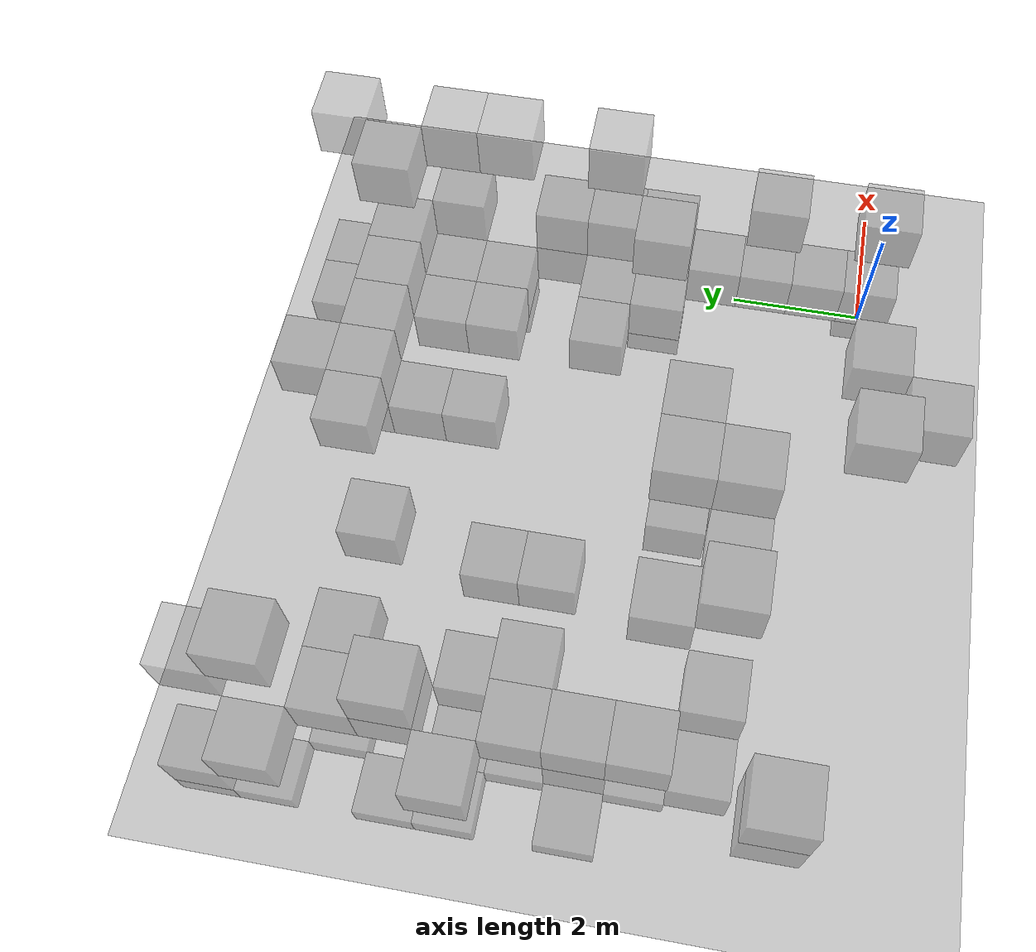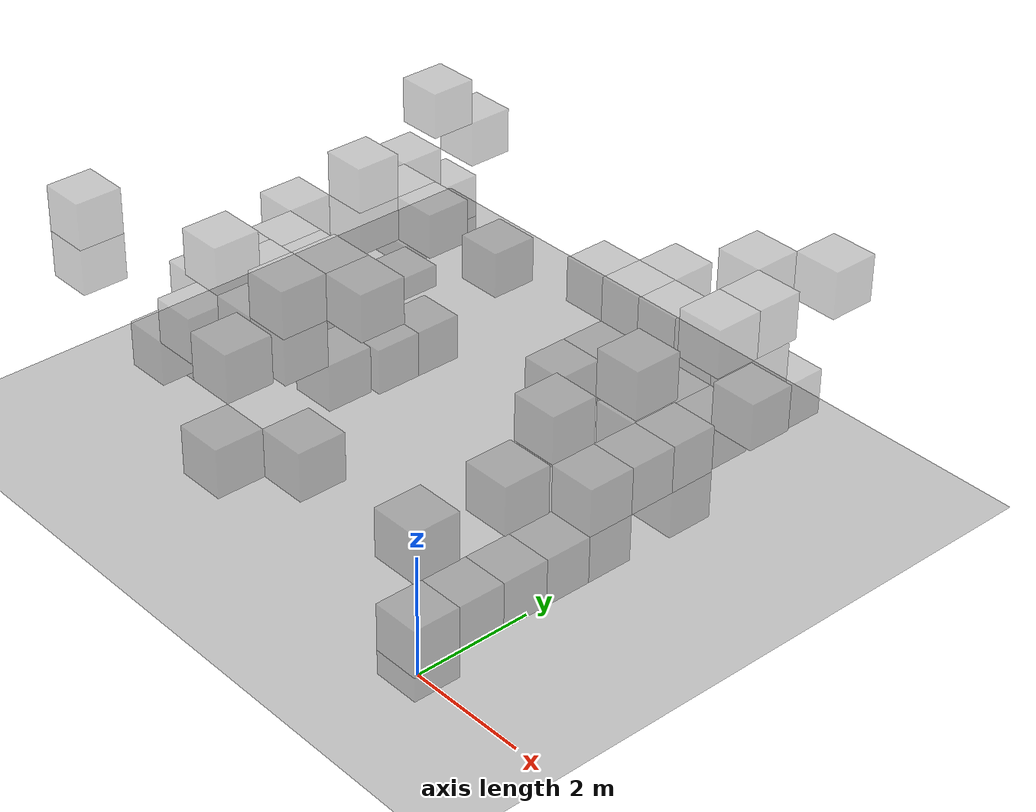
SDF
<sdf version="1.6">
 <world name="cramped_environment">
  <include><uri>model://sun</uri></include>
  <include><uri>model://ground_plane</uri></include>
  <model name="obs_0">
   <static>true</static>
   <pose>-3.20 7.20 1.60 0 0 0</pose>
   <link name="link">
    <collision name="collision"><geometry><box><size>0.80 0.80 0.80</size></box></geometry></collision>
    <visual name="visual">
     <transparency>0.5</transparency>
     <geometry><box><size>0.80 0.80 0.80</size></box></geometry>
     <material>
      <script><name>Gazebo/Grey</name><uri>file://media/materials/scripts/gazebo.material</uri></script>
     </material>
    </visual>
   </link>
  </model>
  <model name="obs_25">
   <static>true</static>
   <pose>-7.20 6.40 1.60 0 0 0</pose>
   <link name="link">
    <collision name="collision"><geometry><box><size>0.80 0.80 0.80</size></box></geometry></collision>
    <visual name="visual">
     <transparency>0.5</transparency>
     <geometry><box><size>0.80 0.80 0.80</size></box></geometry>
     <material>
      <script><name>Gazebo/Grey</name><uri>file://media/materials/scripts/gazebo.material</uri></script>
     </material>
    </visual>
   </link>
  </model>
  <model name="obs_36">
   <static>true</static>
   <pose>0.00 1.60 0.80 0 0 0</pose>
   <link name="link">
    <collision name="collision"><geometry><box><size>0.80 0.80 0.80</size></box></geometry></collision>
    <visual name="visual">
     <transparency>0.5</transparency>
     <geometry><box><size>0.80 0.80 0.80</size></box></geometry>
     <material>
      <script><name>Gazebo/Grey</name><uri>file://media/materials/scripts/gazebo.material</uri></script>
     </material>
    </visual>
   </link>
  </model>
  <model name="obs_38">
   <static>true</static>
   <pose>-8.00 4.00 0.00 0 0 0</pose>
   <link name="link">
    <collision name="collision"><geometry><box><size>0.80 0.80 0.80</size></box></geometry></collision>
    <visual name="visual">
     <transparency>0.5</transparency>
     <geometry><box><size>0.80 0.80 0.80</size></box></geometry>
     <material>
      <script><name>Gazebo/Grey</name><uri>file://media/materials/scripts/gazebo.material</uri></script>
     </material>
    </visual>
   </link>
  </model>
  <model name="obs_45">
   <static>true</static>
   <pose>-5.60 4.00 0.80 0 0 0</pose>
   <link name="link">
    <collision name="collision"><geometry><box><size>0.80 0.80 0.80</size></box></geometry></collision>
    <visual name="visual">
     <transparency>0.5</transparency>
     <geometry><box><size>0.80 0.80 0.80</size></box></geometry>
     <material>
      <script><name>Gazebo/Grey</name><uri>file://media/materials/scripts/gazebo.material</uri></script>
     </material>
    </visual>
   </link>
  </model>
  <model name="obs_58">
   <static>true</static>
   <pose>-0.80 7.20 1.60 0 0 0</pose>
   <link name="link">
    <collision name="collision"><geometry><box><size>0.80 0.80 0.80</size></box></geometry></collision>
    <visual name="visual">
     <transparency>0.5</transparency>
     <geometry><box><size>0.80 0.80 0.80</size></box></geometry>
     <material>
      <script><name>Gazebo/Grey</name><uri>file://media/materials/scripts/gazebo.material</uri></script>
     </material>
    </visual>
   </link>
  </model>
  <model name="obs_59">
   <static>true</static>
   <pose>-1.60 7.20 1.60 0 0 0</pose>
   <link name="link">
    <collision name="collision"><geometry><box><size>0.80 0.80 0.80</size></box></geometry></collision>
    <visual name="visual">
     <transparency>0.5</transparency>
     <geometry><box><size>0.80 0.80 0.80</size></box></geometry>
     <material>
      <script><name>Gazebo/Grey</name><uri>file://media/materials/scripts/gazebo.material</uri></script>
     </material>
    </visual>
   </link>
  </model>
  <model name="obs_73">
   <static>true</static>
   <pose>0.00 4.00 1.60 0 0 0</pose>
   <link name="link">
    <collision name="collision"><geometry><box><size>0.80 0.80 0.80</size></box></geometry></collision>
    <visual name="visual">
     <transparency>0.5</transparency>
     <geometry><box><size>0.80 0.80 0.80</size></box></geometry>
     <material>
      <script><name>Gazebo/Grey</name><uri>file://media/materials/scripts/gazebo.material</uri></script>
     </material>
    </visual>
   </link>
  </model>
  <model name="obs_79">
   <static>true</static>
   <pose>-8.00 6.40 0.00 0 0 0</pose>
   <link name="link">
    <collision name="collision"><geometry><box><size>0.80 0.80 0.80</size></box></geometry></collision>
    <visual name="visual">
     <transparency>0.5</transparency>
     <geometry><box><size>0.80 0.80 0.80</size></box></geometry>
     <material>
      <script><name>Gazebo/Grey</name><uri>file://media/materials/scripts/gazebo.material</uri></script>
     </material>
    </visual>
   </link>
  </model>
  <model name="obs_81">
   <static>true</static>
   <pose>0.00 4.80 1.60 0 0 0</pose>
   <link name="link">
    <collision name="collision"><geometry><box><size>0.80 0.80 0.80</size></box></geometry></collision>
    <visual name="visual">
     <transparency>0.5</transparency>
     <geometry><box><size>0.80 0.80 0.80</size></box></geometry>
     <material>
      <script><name>Gazebo/Grey</name><uri>file://media/materials/scripts/gazebo.material</uri></script>
     </material>
    </visual>
   </link>
  </model>
  <model name="obs_82">
   <static>true</static>
   <pose>-8.00 3.20 1.60 0 0 0</pose>
   <link name="link">
    <collision name="collision"><geometry><box><size>0.80 0.80 0.80</size></box></geometry></collision>
    <visual name="visual">
     <transparency>0.5</transparency>
     <geometry><box><size>0.80 0.80 0.80</size></box></geometry>
     <material>
      <script><name>Gazebo/Grey</name><uri>file://media/materials/scripts/gazebo.material</uri></script>
     </material>
    </visual>
   </link>
  </model>
  <model name="obs_83">
   <static>true</static>
   <pose>-5.60 6.40 1.60 0 0 0</pose>
   <link name="link">
    <collision name="collision"><geometry><box><size>0.80 0.80 0.80</size></box></geometry></collision>
    <visual name="visual">
     <transparency>0.5</transparency>
     <geometry><box><size>0.80 0.80 0.80</size></box></geometry>
     <material>
      <script><name>Gazebo/Grey</name><uri>file://media/materials/scripts/gazebo.material</uri></script>
     </material>
    </visual>
   </link>
  </model>
  <model name="obs_93">
   <static>true</static>
   <pose>-4.00 0.00 3.20 0 0 0</pose>
   <link name="link">
    <collision name="collision"><geometry><box><size>0.80 0.80 0.80</size></box></geometry></collision>
    <visual name="visual">
     <transparency>0.5</transparency>
     <geometry><box><size>0.80 0.80 0.80</size></box></geometry>
     <material>
      <script><name>Gazebo/Grey</name><uri>file://media/materials/scripts/gazebo.material</uri></script>
     </material>
    </visual>
   </link>
  </model>
  <model name="obs_95">
   <static>true</static>
   <pose>-8.80 4.80 0.00 0 0 0</pose>
   <link name="link">
    <collision name="collision"><geometry><box><size>0.80 0.80 0.80</size></box></geometry></collision>
    <visual name="visual">
     <transparency>0.5</transparency>
     <geometry><box><size>0.80 0.80 0.80</size></box></geometry>
     <material>
      <script><name>Gazebo/Grey</name><uri>file://media/materials/scripts/gazebo.material</uri></script>
     </material>
    </visual>
   </link>
  </model>
  <model name="obs_107">
   <static>true</static>
   <pose>0.00 6.40 1.60 0 0 0</pose>
   <link name="link">
    <collision name="collision"><geometry><box><size>0.80 0.80 0.80</size></box></geometry></collision>
    <visual name="visual">
     <transparency>0.5</transparency>
     <geometry><box><size>0.80 0.80 0.80</size></box></geometry>
     <material>
      <script><name>Gazebo/Grey</name><uri>file://media/materials/scripts/gazebo.material</uri></script>
     </material>
    </visual>
   </link>
  </model>
  <model name="obs_116">
   <static>true</static>
   <pose>-8.00 5.60 2.40 0 0 0</pose>
   <link name="link">
    <collision name="collision"><geometry><box><size>0.80 0.80 0.80</size></box></geometry></collision>
    <visual name="visual">
     <transparency>0.5</transparency>
     <geometry><box><size>0.80 0.80 0.80</size></box></geometry>
     <material>
      <script><name>Gazebo/Grey</name><uri>file://media/materials/scripts/gazebo.material</uri></script>
     </material>
    </visual>
   </link>
  </model>
  <model name="obs_127">
   <static>true</static>
   <pose>-4.80 2.40 1.60 0 0 0</pose>
   <link name="link">
    <collision name="collision"><geometry><box><size>0.80 0.80 0.80</size></box></geometry></collision>
    <visual name="visual">
     <transparency>0.5</transparency>
     <geometry><box><size>0.80 0.80 0.80</size></box></geometry>
     <material>
      <script><name>Gazebo/Grey</name><uri>file://media/materials/scripts/gazebo.material</uri></script>
     </material>
    </visual>
   </link>
  </model>
  <model name="obs_128">
   <static>true</static>
   <pose>-6.40 2.40 2.40 0 0 0</pose>
   <link name="link">
    <collision name="collision"><geometry><box><size>0.80 0.80 0.80</size></box></geometry></collision>
    <visual name="visual">
     <transparency>0.5</transparency>
     <geometry><box><size>0.80 0.80 0.80</size></box></geometry>
     <material>
      <script><name>Gazebo/Grey</name><uri>file://media/materials/scripts/gazebo.material</uri></script>
     </material>
    </visual>
   </link>
  </model>
  <model name="obs_134">
   <static>true</static>
   <pose>-3.20 5.60 0.80 0 0 0</pose>
   <link name="link">
    <collision name="collision"><geometry><box><size>0.80 0.80 0.80</size></box></geometry></collision>
    <visual name="visual">
     <transparency>0.5</transparency>
     <geometry><box><size>0.80 0.80 0.80</size></box></geometry>
     <material>
      <script><name>Gazebo/Grey</name><uri>file://media/materials/scripts/gazebo.material</uri></script>
     </material>
    </visual>
   </link>
  </model>
  <model name="obs_141">
   <static>true</static>
   <pose>-4.00 2.40 3.20 0 0 0</pose>
   <link name="link">
    <collision name="collision"><geometry><box><size>0.80 0.80 0.80</size></box></geometry></collision>
    <visual name="visual">
     <transparency>0.5</transparency>
     <geometry><box><size>0.80 0.80 0.80</size></box></geometry>
     <material>
      <script><name>Gazebo/Grey</name><uri>file://media/materials/scripts/gazebo.material</uri></script>
     </material>
    </visual>
   </link>
  </model>
  <model name="obs_143">
   <static>true</static>
   <pose>-8.80 7.20 0.00 0 0 0</pose>
   <link name="link">
    <collision name="collision"><geometry><box><size>0.80 0.80 0.80</size></box></geometry></collision>
    <visual name="visual">
     <transparency>0.5</transparency>
     <geometry><box><size>0.80 0.80 0.80</size></box></geometry>
     <material>
      <script><name>Gazebo/Grey</name><uri>file://media/materials/scripts/gazebo.material</uri></script>
     </material>
    </visual>
   </link>
  </model>
  <model name="obs_147">
   <static>true</static>
   <pose>-8.80 8.00 0.80 0 0 0</pose>
   <link name="link">
    <collision name="collision"><geometry><box><size>0.80 0.80 0.80</size></box></geometry></collision>
    <visual name="visual">
     <transparency>0.5</transparency>
     <geometry><box><size>0.80 0.80 0.80</size></box></geometry>
     <material>
      <script><name>Gazebo/Grey</name><uri>file://media/materials/scripts/gazebo.material</uri></script>
     </material>
    </visual>
   </link>
  </model>
  <model name="obs_150">
   <static>true</static>
   <pose>-0.80 3.20 0.80 0 0 0</pose>
   <link name="link">
    <collision name="collision"><geometry><box><size>0.80 0.80 0.80</size></box></geometry></collision>
    <visual name="visual">
     <transparency>0.5</transparency>
     <geometry><box><size>0.80 0.80 0.80</size></box></geometry>
     <material>
      <script><name>Gazebo/Grey</name><uri>file://media/materials/scripts/gazebo.material</uri></script>
     </material>
    </visual>
   </link>
  </model>
  <model name="obs_159">
   <static>true</static>
   <pose>0.00 5.60 3.20 0 0 0</pose>
   <link name="link">
    <collision name="collision"><geometry><box><size>0.80 0.80 0.80</size></box></geometry></collision>
    <visual name="visual">
     <transparency>0.5</transparency>
     <geometry><box><size>0.80 0.80 0.80</size></box></geometry>
     <material>
      <script><name>Gazebo/Grey</name><uri>file://media/materials/scripts/gazebo.material</uri></script>
     </material>
    </visual>
   </link>
  </model>
  <model name="obs_160">
   <static>true</static>
   <pose>-8.00 8.00 2.40 0 0 0</pose>
   <link name="link">
    <collision name="collision"><geometry><box><size>0.80 0.80 0.80</size></box></geometry></collision>
    <visual name="visual">
     <transparency>0.5</transparency>
     <geometry><box><size>0.80 0.80 0.80</size></box></geometry>
     <material>
      <script><name>Gazebo/Grey</name><uri>file://media/materials/scripts/gazebo.material</uri></script>
     </material>
    </visual>
   </link>
  </model>
  <model name="obs_161">
   <static>true</static>
   <pose>-7.20 4.80 0.80 0 0 0</pose>
   <link name="link">
    <collision name="collision"><geometry><box><size>0.80 0.80 0.80</size></box></geometry></collision>
    <visual name="visual">
     <transparency>0.5</transparency>
     <geometry><box><size>0.80 0.80 0.80</size></box></geometry>
     <material>
      <script><name>Gazebo/Grey</name><uri>file://media/materials/scripts/gazebo.material</uri></script>
     </material>
    </visual>
   </link>
  </model>
  <model name="obs_164">
   <static>true</static>
   <pose>-2.40 0.00 2.40 0 0 0</pose>
   <link name="link">
    <collision name="collision"><geometry><box><size>0.80 0.80 0.80</size></box></geometry></collision>
    <visual name="visual">
     <transparency>0.5</transparency>
     <geometry><box><size>0.80 0.80 0.80</size></box></geometry>
     <material>
      <script><name>Gazebo/Grey</name><uri>file://media/materials/scripts/gazebo.material</uri></script>
     </material>
    </visual>
   </link>
  </model>
  <model name="obs_166">
   <static>true</static>
   <pose>0.00 0.00 0.80 0 0 0</pose>
   <link name="link">
    <collision name="collision"><geometry><box><size>0.80 0.80 0.80</size></box></geometry></collision>
    <visual name="visual">
     <transparency>0.5</transparency>
     <geometry><box><size>0.80 0.80 0.80</size></box></geometry>
     <material>
      <script><name>Gazebo/Grey</name><uri>file://media/materials/scripts/gazebo.material</uri></script>
     </material>
    </visual>
   </link>
  </model>
  <model name="obs_168">
   <static>true</static>
   <pose>-8.00 2.40 0.00 0 0 0</pose>
   <link name="link">
    <collision name="collision"><geometry><box><size>0.80 0.80 0.80</size></box></geometry></collision>
    <visual name="visual">
     <transparency>0.5</transparency>
     <geometry><box><size>0.80 0.80 0.80</size></box></geometry>
     <material>
      <script><name>Gazebo/Grey</name><uri>file://media/materials/scripts/gazebo.material</uri></script>
     </material>
    </visual>
   </link>
  </model>
  <model name="obs_170">
   <static>true</static>
   <pose>-3.20 7.20 0.80 0 0 0</pose>
   <link name="link">
    <collision name="collision"><geometry><box><size>0.80 0.80 0.80</size></box></geometry></collision>
    <visual name="visual">
     <transparency>0.5</transparency>
     <geometry><box><size>0.80 0.80 0.80</size></box></geometry>
     <material>
      <script><name>Gazebo/Grey</name><uri>file://media/materials/scripts/gazebo.material</uri></script>
     </material>
    </visual>
   </link>
  </model>
  <model name="obs_173">
   <static>true</static>
   <pose>-3.20 8.00 1.60 0 0 0</pose>
   <link name="link">
    <collision name="collision"><geometry><box><size>0.80 0.80 0.80</size></box></geometry></collision>
    <visual name="visual">
     <transparency>0.5</transparency>
     <geometry><box><size>0.80 0.80 0.80</size></box></geometry>
     <material>
      <script><name>Gazebo/Grey</name><uri>file://media/materials/scripts/gazebo.material</uri></script>
     </material>
    </visual>
   </link>
  </model>
  <model name="obs_178">
   <static>true</static>
   <pose>-4.80 1.60 3.20 0 0 0</pose>
   <link name="link">
    <collision name="collision"><geometry><box><size>0.80 0.80 0.80</size></box></geometry></collision>
    <visual name="visual">
     <transparency>0.5</transparency>
     <geometry><box><size>0.80 0.80 0.80</size></box></geometry>
     <material>
      <script><name>Gazebo/Grey</name><uri>file://media/materials/scripts/gazebo.material</uri></script>
     </material>
    </visual>
   </link>
  </model>
  <model name="obs_196">
   <static>true</static>
   <pose>-0.80 5.60 0.80 0 0 0</pose>
   <link name="link">
    <collision name="collision"><geometry><box><size>0.80 0.80 0.80</size></box></geometry></collision>
    <visual name="visual">
     <transparency>0.5</transparency>
     <geometry><box><size>0.80 0.80 0.80</size></box></geometry>
     <material>
      <script><name>Gazebo/Grey</name><uri>file://media/materials/scripts/gazebo.material</uri></script>
     </material>
    </visual>
   </link>
  </model>
  <model name="obs_197">
   <static>true</static>
   <pose>-1.60 5.60 0.80 0 0 0</pose>
   <link name="link">
    <collision name="collision"><geometry><box><size>0.80 0.80 0.80</size></box></geometry></collision>
    <visual name="visual">
     <transparency>0.5</transparency>
     <geometry><box><size>0.80 0.80 0.80</size></box></geometry>
     <material>
      <script><name>Gazebo/Grey</name><uri>file://media/materials/scripts/gazebo.material</uri></script>
     </material>
    </visual>
   </link>
  </model>
  <model name="obs_204">
   <static>true</static>
   <pose>0.00 8.00 3.20 0 0 0</pose>
   <link name="link">
    <collision name="collision"><geometry><box><size>0.80 0.80 0.80</size></box></geometry></collision>
    <visual name="visual">
     <transparency>0.5</transparency>
     <geometry><box><size>0.80 0.80 0.80</size></box></geometry>
     <material>
      <script><name>Gazebo/Grey</name><uri>file://media/materials/scripts/gazebo.material</uri></script>
     </material>
    </visual>
   </link>
  </model>
  <model name="obs_206">
   <static>true</static>
   <pose>-8.80 0.80 3.20 0 0 0</pose>
   <link name="link">
    <collision name="collision"><geometry><box><size>0.80 0.80 0.80</size></box></geometry></collision>
    <visual name="visual">
     <transparency>0.5</transparency>
     <geometry><box><size>0.80 0.80 0.80</size></box></geometry>
     <material>
      <script><name>Gazebo/Grey</name><uri>file://media/materials/scripts/gazebo.material</uri></script>
     </material>
    </visual>
   </link>
  </model>
  <model name="obs_210">
   <static>true</static>
   <pose>0.00 2.40 0.80 0 0 0</pose>
   <link name="link">
    <collision name="collision"><geometry><box><size>0.80 0.80 0.80</size></box></geometry></collision>
    <visual name="visual">
     <transparency>0.5</transparency>
     <geometry><box><size>0.80 0.80 0.80</size></box></geometry>
     <material>
      <script><name>Gazebo/Grey</name><uri>file://media/materials/scripts/gazebo.material</uri></script>
     </material>
    </visual>
   </link>
  </model>
  <model name="obs_211">
   <static>true</static>
   <pose>-8.00 4.80 0.00 0 0 0</pose>
   <link name="link">
    <collision name="collision"><geometry><box><size>0.80 0.80 0.80</size></box></geometry></collision>
    <visual name="visual">
     <transparency>0.5</transparency>
     <geometry><box><size>0.80 0.80 0.80</size></box></geometry>
     <material>
      <script><name>Gazebo/Grey</name><uri>file://media/materials/scripts/gazebo.material</uri></script>
     </material>
    </visual>
   </link>
  </model>
  <model name="obs_217">
   <static>true</static>
   <pose>0.00 3.20 1.60 0 0 0</pose>
   <link name="link">
    <collision name="collision"><geometry><box><size>0.80 0.80 0.80</size></box></geometry></collision>
    <visual name="visual">
     <transparency>0.5</transparency>
     <geometry><box><size>0.80 0.80 0.80</size></box></geometry>
     <material>
      <script><name>Gazebo/Grey</name><uri>file://media/materials/scripts/gazebo.material</uri></script>
     </material>
    </visual>
   </link>
  </model>
  <model name="obs_224">
   <static>true</static>
   <pose>-5.60 4.80 0.80 0 0 0</pose>
   <link name="link">
    <collision name="collision"><geometry><box><size>0.80 0.80 0.80</size></box></geometry></collision>
    <visual name="visual">
     <transparency>0.5</transparency>
     <geometry><box><size>0.80 0.80 0.80</size></box></geometry>
     <material>
      <script><name>Gazebo/Grey</name><uri>file://media/materials/scripts/gazebo.material</uri></script>
     </material>
    </visual>
   </link>
  </model>
  <model name="obs_229">
   <static>true</static>
   <pose>-5.60 1.60 2.40 0 0 0</pose>
   <link name="link">
    <collision name="collision"><geometry><box><size>0.80 0.80 0.80</size></box></geometry></collision>
    <visual name="visual">
     <transparency>0.5</transparency>
     <geometry><box><size>0.80 0.80 0.80</size></box></geometry>
     <material>
      <script><name>Gazebo/Grey</name><uri>file://media/materials/scripts/gazebo.material</uri></script>
     </material>
    </visual>
   </link>
  </model>
  <model name="obs_237">
   <static>true</static>
   <pose>-8.80 3.20 0.00 0 0 0</pose>
   <link name="link">
    <collision name="collision"><geometry><box><size>0.80 0.80 0.80</size></box></geometry></collision>
    <visual name="visual">
     <transparency>0.5</transparency>
     <geometry><box><size>0.80 0.80 0.80</size></box></geometry>
     <material>
      <script><name>Gazebo/Grey</name><uri>file://media/materials/scripts/gazebo.material</uri></script>
     </material>
    </visual>
   </link>
  </model>
  <model name="obs_241">
   <static>true</static>
   <pose>-0.80 8.00 0.80 0 0 0</pose>
   <link name="link">
    <collision name="collision"><geometry><box><size>0.80 0.80 0.80</size></box></geometry></collision>
    <visual name="visual">
     <transparency>0.5</transparency>
     <geometry><box><size>0.80 0.80 0.80</size></box></geometry>
     <material>
      <script><name>Gazebo/Grey</name><uri>file://media/materials/scripts/gazebo.material</uri></script>
     </material>
    </visual>
   </link>
  </model>
  <model name="obs_242">
   <static>true</static>
   <pose>-1.60 8.00 0.80 0 0 0</pose>
   <link name="link">
    <collision name="collision"><geometry><box><size>0.80 0.80 0.80</size></box></geometry></collision>
    <visual name="visual">
     <transparency>0.5</transparency>
     <geometry><box><size>0.80 0.80 0.80</size></box></geometry>
     <material>
      <script><name>Gazebo/Grey</name><uri>file://media/materials/scripts/gazebo.material</uri></script>
     </material>
    </visual>
   </link>
  </model>
  <model name="obs_252">
   <static>true</static>
   <pose>0.00 4.80 0.80 0 0 0</pose>
   <link name="link">
    <collision name="collision"><geometry><box><size>0.80 0.80 0.80</size></box></geometry></collision>
    <visual name="visual">
     <transparency>0.5</transparency>
     <geometry><box><size>0.80 0.80 0.80</size></box></geometry>
     <material>
      <script><name>Gazebo/Grey</name><uri>file://media/materials/scripts/gazebo.material</uri></script>
     </material>
    </visual>
   </link>
  </model>
  <model name="obs_257">
   <static>true</static>
   <pose>-8.00 3.20 0.80 0 0 0</pose>
   <link name="link">
    <collision name="collision"><geometry><box><size>0.80 0.80 0.80</size></box></geometry></collision>
    <visual name="visual">
     <transparency>0.5</transparency>
     <geometry><box><size>0.80 0.80 0.80</size></box></geometry>
     <material>
      <script><name>Gazebo/Grey</name><uri>file://media/materials/scripts/gazebo.material</uri></script>
     </material>
    </visual>
   </link>
  </model>
  <model name="obs_264">
   <static>true</static>
   <pose>0.00 1.60 2.40 0 0 0</pose>
   <link name="link">
    <collision name="collision"><geometry><box><size>0.80 0.80 0.80</size></box></geometry></collision>
    <visual name="visual">
     <transparency>0.5</transparency>
     <geometry><box><size>0.80 0.80 0.80</size></box></geometry>
     <material>
      <script><name>Gazebo/Grey</name><uri>file://media/materials/scripts/gazebo.material</uri></script>
     </material>
    </visual>
   </link>
  </model>
  <model name="obs_266">
   <static>true</static>
   <pose>-8.00 4.00 1.60 0 0 0</pose>
   <link name="link">
    <collision name="collision"><geometry><box><size>0.80 0.80 0.80</size></box></geometry></collision>
    <visual name="visual">
     <transparency>0.5</transparency>
     <geometry><box><size>0.80 0.80 0.80</size></box></geometry>
     <material>
      <script><name>Gazebo/Grey</name><uri>file://media/materials/scripts/gazebo.material</uri></script>
     </material>
    </visual>
   </link>
  </model>
  <model name="obs_280">
   <static>true</static>
   <pose>-4.00 7.20 1.60 0 0 0</pose>
   <link name="link">
    <collision name="collision"><geometry><box><size>0.80 0.80 0.80</size></box></geometry></collision>
    <visual name="visual">
     <transparency>0.5</transparency>
     <geometry><box><size>0.80 0.80 0.80</size></box></geometry>
     <material>
      <script><name>Gazebo/Grey</name><uri>file://media/materials/scripts/gazebo.material</uri></script>
     </material>
    </visual>
   </link>
  </model>
  <model name="obs_284">
   <static>true</static>
   <pose>-8.80 5.60 0.00 0 0 0</pose>
   <link name="link">
    <collision name="collision"><geometry><box><size>0.80 0.80 0.80</size></box></geometry></collision>
    <visual name="visual">
     <transparency>0.5</transparency>
     <geometry><box><size>0.80 0.80 0.80</size></box></geometry>
     <material>
      <script><name>Gazebo/Grey</name><uri>file://media/materials/scripts/gazebo.material</uri></script>
     </material>
    </visual>
   </link>
  </model>
  <model name="obs_290">
   <static>true</static>
   <pose>-0.80 7.20 3.20 0 0 0</pose>
   <link name="link">
    <collision name="collision"><geometry><box><size>0.80 0.80 0.80</size></box></geometry></collision>
    <visual name="visual">
     <transparency>0.5</transparency>
     <geometry><box><size>0.80 0.80 0.80</size></box></geometry>
     <material>
      <script><name>Gazebo/Grey</name><uri>file://media/materials/scripts/gazebo.material</uri></script>
     </material>
    </visual>
   </link>
  </model>
  <model name="obs_299">
   <static>true</static>
   <pose>-8.00 5.60 1.60 0 0 0</pose>
   <link name="link">
    <collision name="collision"><geometry><box><size>0.80 0.80 0.80</size></box></geometry></collision>
    <visual name="visual">
     <transparency>0.5</transparency>
     <geometry><box><size>0.80 0.80 0.80</size></box></geometry>
     <material>
      <script><name>Gazebo/Grey</name><uri>file://media/materials/scripts/gazebo.material</uri></script>
     </material>
    </visual>
   </link>
  </model>
  <model name="obs_301">
   <static>true</static>
   <pose>0.00 4.00 3.20 0 0 0</pose>
   <link name="link">
    <collision name="collision"><geometry><box><size>0.80 0.80 0.80</size></box></geometry></collision>
    <visual name="visual">
     <transparency>0.5</transparency>
     <geometry><box><size>0.80 0.80 0.80</size></box></geometry>
     <material>
      <script><name>Gazebo/Grey</name><uri>file://media/materials/scripts/gazebo.material</uri></script>
     </material>
    </visual>
   </link>
  </model>
  <model name="obs_306">
   <static>true</static>
   <pose>-8.00 6.40 1.60 0 0 0</pose>
   <link name="link">
    <collision name="collision"><geometry><box><size>0.80 0.80 0.80</size></box></geometry></collision>
    <visual name="visual">
     <transparency>0.5</transparency>
     <geometry><box><size>0.80 0.80 0.80</size></box></geometry>
     <material>
      <script><name>Gazebo/Grey</name><uri>file://media/materials/scripts/gazebo.material</uri></script>
     </material>
    </visual>
   </link>
  </model>
  <model name="obs_314">
   <static>true</static>
   <pose>-3.20 6.40 0.80 0 0 0</pose>
   <link name="link">
    <collision name="collision"><geometry><box><size>0.80 0.80 0.80</size></box></geometry></collision>
    <visual name="visual">
     <transparency>0.5</transparency>
     <geometry><box><size>0.80 0.80 0.80</size></box></geometry>
     <material>
      <script><name>Gazebo/Grey</name><uri>file://media/materials/scripts/gazebo.material</uri></script>
     </material>
    </visual>
   </link>
  </model>
  <model name="obs_321">
   <static>true</static>
   <pose>-8.80 8.00 0.00 0 0 0</pose>
   <link name="link">
    <collision name="collision"><geometry><box><size>0.80 0.80 0.80</size></box></geometry></collision>
    <visual name="visual">
     <transparency>0.5</transparency>
     <geometry><box><size>0.80 0.80 0.80</size></box></geometry>
     <material>
      <script><name>Gazebo/Grey</name><uri>file://media/materials/scripts/gazebo.material</uri></script>
     </material>
    </visual>
   </link>
  </model>
  <model name="obs_325">
   <static>true</static>
   <pose>-0.80 3.20 0.00 0 0 0</pose>
   <link name="link">
    <collision name="collision"><geometry><box><size>0.80 0.80 0.80</size></box></geometry></collision>
    <visual name="visual">
     <transparency>0.5</transparency>
     <geometry><box><size>0.80 0.80 0.80</size></box></geometry>
     <material>
      <script><name>Gazebo/Grey</name><uri>file://media/materials/scripts/gazebo.material</uri></script>
     </material>
    </visual>
   </link>
  </model>
  <model name="obs_330">
   <static>true</static>
   <pose>-8.80 4.80 1.60 0 0 0</pose>
   <link name="link">
    <collision name="collision"><geometry><box><size>0.80 0.80 0.80</size></box></geometry></collision>
    <visual name="visual">
     <transparency>0.5</transparency>
     <geometry><box><size>0.80 0.80 0.80</size></box></geometry>
     <material>
      <script><name>Gazebo/Grey</name><uri>file://media/materials/scripts/gazebo.material</uri></script>
     </material>
    </visual>
   </link>
  </model>
  <model name="obs_334">
   <static>true</static>
   <pose>-0.80 4.00 0.80 0 0 0</pose>
   <link name="link">
    <collision name="collision"><geometry><box><size>0.80 0.80 0.80</size></box></geometry></collision>
    <visual name="visual">
     <transparency>0.5</transparency>
     <geometry><box><size>0.80 0.80 0.80</size></box></geometry>
     <material>
      <script><name>Gazebo/Grey</name><uri>file://media/materials/scripts/gazebo.material</uri></script>
     </material>
    </visual>
   </link>
  </model>
  <model name="obs_335">
   <static>true</static>
   <pose>-1.60 4.00 0.80 0 0 0</pose>
   <link name="link">
    <collision name="collision"><geometry><box><size>0.80 0.80 0.80</size></box></geometry></collision>
    <visual name="visual">
     <transparency>0.5</transparency>
     <geometry><box><size>0.80 0.80 0.80</size></box></geometry>
     <material>
      <script><name>Gazebo/Grey</name><uri>file://media/materials/scripts/gazebo.material</uri></script>
     </material>
    </visual>
   </link>
  </model>
  <model name="obs_338">
   <static>true</static>
   <pose>-2.40 7.20 1.60 0 0 0</pose>
   <link name="link">
    <collision name="collision"><geometry><box><size>0.80 0.80 0.80</size></box></geometry></collision>
    <visual name="visual">
     <transparency>0.5</transparency>
     <geometry><box><size>0.80 0.80 0.80</size></box></geometry>
     <material>
      <script><name>Gazebo/Grey</name><uri>file://media/materials/scripts/gazebo.material</uri></script>
     </material>
    </visual>
   </link>
  </model>
  <model name="obs_341">
   <static>true</static>
   <pose>0.00 6.40 3.20 0 0 0</pose>
   <link name="link">
    <collision name="collision"><geometry><box><size>0.80 0.80 0.80</size></box></geometry></collision>
    <visual name="visual">
     <transparency>0.5</transparency>
     <geometry><box><size>0.80 0.80 0.80</size></box></geometry>
     <material>
      <script><name>Gazebo/Grey</name><uri>file://media/materials/scripts/gazebo.material</uri></script>
     </material>
    </visual>
   </link>
  </model>
  <model name="obs_342">
   <static>true</static>
   <link name="link">
    <collision name="collision"><geometry><box><size>0.80 0.80 0.80</size></box></geometry></collision>
    <visual name="visual">
     <transparency>0.5</transparency>
     <geometry><box><size>0.80 0.80 0.80</size></box></geometry>
     <material>
      <script><name>Gazebo/Grey</name><uri>file://media/materials/scripts/gazebo.material</uri></script>
     </material>
    </visual>
   </link>
  </model>
  <model name="obs_345">
   <static>true</static>
   <pose>-7.20 1.60 1.60 0 0 0</pose>
   <link name="link">
    <collision name="collision"><geometry><box><size>0.80 0.80 0.80</size></box></geometry></collision>
    <visual name="visual">
     <transparency>0.5</transparency>
     <geometry><box><size>0.80 0.80 0.80</size></box></geometry>
     <material>
      <script><name>Gazebo/Grey</name><uri>file://media/materials/scripts/gazebo.material</uri></script>
     </material>
    </visual>
   </link>
  </model>
  <model name="obs_347">
   <static>true</static>
   <pose>0.00 0.80 0.80 0 0 0</pose>
   <link name="link">
    <collision name="collision"><geometry><box><size>0.80 0.80 0.80</size></box></geometry></collision>
    <visual name="visual">
     <transparency>0.5</transparency>
     <geometry><box><size>0.80 0.80 0.80</size></box></geometry>
     <material>
      <script><name>Gazebo/Grey</name><uri>file://media/materials/scripts/gazebo.material</uri></script>
     </material>
    </visual>
   </link>
  </model>
  <model name="obs_354">
   <static>true</static>
   <pose>-4.80 1.60 2.40 0 0 0</pose>
   <link name="link">
    <collision name="collision"><geometry><box><size>0.80 0.80 0.80</size></box></geometry></collision>
    <visual name="visual">
     <transparency>0.5</transparency>
     <geometry><box><size>0.80 0.80 0.80</size></box></geometry>
     <material>
      <script><name>Gazebo/Grey</name><uri>file://media/materials/scripts/gazebo.material</uri></script>
     </material>
    </visual>
   </link>
  </model>
  <model name="obs_356">
   <static>true</static>
   <pose>-6.40 1.60 3.20 0 0 0</pose>
   <link name="link">
    <collision name="collision"><geometry><box><size>0.80 0.80 0.80</size></box></geometry></collision>
    <visual name="visual">
     <transparency>0.5</transparency>
     <geometry><box><size>0.80 0.80 0.80</size></box></geometry>
     <material>
      <script><name>Gazebo/Grey</name><uri>file://media/materials/scripts/gazebo.material</uri></script>
     </material>
    </visual>
   </link>
  </model>
  <model name="obs_359">
   <static>true</static>
   <pose>-4.80 2.40 3.20 0 0 0</pose>
   <link name="link">
    <collision name="collision"><geometry><box><size>0.80 0.80 0.80</size></box></geometry></collision>
    <visual name="visual">
     <transparency>0.5</transparency>
     <geometry><box><size>0.80 0.80 0.80</size></box></geometry>
     <material>
      <script><name>Gazebo/Grey</name><uri>file://media/materials/scripts/gazebo.material</uri></script>
     </material>
    </visual>
   </link>
  </model>
  <model name="obs_365">
   <static>true</static>
   <pose>-3.20 -0.80 2.40 0 0 0</pose>
   <link name="link">
    <collision name="collision"><geometry><box><size>0.80 0.80 0.80</size></box></geometry></collision>
    <visual name="visual">
     <transparency>0.5</transparency>
     <geometry><box><size>0.80 0.80 0.80</size></box></geometry>
     <material>
      <script><name>Gazebo/Grey</name><uri>file://media/materials/scripts/gazebo.material</uri></script>
     </material>
    </visual>
   </link>
  </model>
  <model name="obs_370">
   <static>true</static>
   <pose>-0.80 5.60 0.00 0 0 0</pose>
   <link name="link">
    <collision name="collision"><geometry><box><size>0.80 0.80 0.80</size></box></geometry></collision>
    <visual name="visual">
     <transparency>0.5</transparency>
     <geometry><box><size>0.80 0.80 0.80</size></box></geometry>
     <material>
      <script><name>Gazebo/Grey</name><uri>file://media/materials/scripts/gazebo.material</uri></script>
     </material>
    </visual>
   </link>
  </model>
  <model name="obs_373">
   <static>true</static>
   <pose>-8.80 7.20 1.60 0 0 0</pose>
   <link name="link">
    <collision name="collision"><geometry><box><size>0.80 0.80 0.80</size></box></geometry></collision>
    <visual name="visual">
     <transparency>0.5</transparency>
     <geometry><box><size>0.80 0.80 0.80</size></box></geometry>
     <material>
      <script><name>Gazebo/Grey</name><uri>file://media/materials/scripts/gazebo.material</uri></script>
     </material>
    </visual>
   </link>
  </model>
  <model name="obs_376">
   <static>true</static>
   <pose>-0.80 6.40 0.80 0 0 0</pose>
   <link name="link">
    <collision name="collision"><geometry><box><size>0.80 0.80 0.80</size></box></geometry></collision>
    <visual name="visual">
     <transparency>0.5</transparency>
     <geometry><box><size>0.80 0.80 0.80</size></box></geometry>
     <material>
      <script><name>Gazebo/Grey</name><uri>file://media/materials/scripts/gazebo.material</uri></script>
     </material>
    </visual>
   </link>
  </model>
  <model name="obs_377">
   <static>true</static>
   <pose>-1.60 6.40 0.80 0 0 0</pose>
   <link name="link">
    <collision name="collision"><geometry><box><size>0.80 0.80 0.80</size></box></geometry></collision>
    <visual name="visual">
     <transparency>0.5</transparency>
     <geometry><box><size>0.80 0.80 0.80</size></box></geometry>
     <material>
      <script><name>Gazebo/Grey</name><uri>file://media/materials/scripts/gazebo.material</uri></script>
     </material>
    </visual>
   </link>
  </model>
  <model name="obs_381">
   <static>true</static>
   <pose>-8.80 0.80 2.40 0 0 0</pose>
   <link name="link">
    <collision name="collision"><geometry><box><size>0.80 0.80 0.80</size></box></geometry></collision>
    <visual name="visual">
     <transparency>0.5</transparency>
     <geometry><box><size>0.80 0.80 0.80</size></box></geometry>
     <material>
      <script><name>Gazebo/Grey</name><uri>file://media/materials/scripts/gazebo.material</uri></script>
     </material>
    </visual>
   </link>
  </model>
  <model name="obs_383">
   <static>true</static>
   <pose>-0.80 3.20 2.40 0 0 0</pose>
   <link name="link">
    <collision name="collision"><geometry><box><size>0.80 0.80 0.80</size></box></geometry></collision>
    <visual name="visual">
     <transparency>0.5</transparency>
     <geometry><box><size>0.80 0.80 0.80</size></box></geometry>
     <material>
      <script><name>Gazebo/Grey</name><uri>file://media/materials/scripts/gazebo.material</uri></script>
     </material>
    </visual>
   </link>
  </model>
  <model name="obs_388">
   <static>true</static>
   <pose>-8.00 7.20 3.20 0 0 0</pose>
   <link name="link">
    <collision name="collision"><geometry><box><size>0.80 0.80 0.80</size></box></geometry></collision>
    <visual name="visual">
     <transparency>0.5</transparency>
     <geometry><box><size>0.80 0.80 0.80</size></box></geometry>
     <material>
      <script><name>Gazebo/Grey</name><uri>file://media/materials/scripts/gazebo.material</uri></script>
     </material>
    </visual>
   </link>
  </model>
  <model name="obs_389">
   <static>true</static>
   <pose>-7.20 4.00 1.60 0 0 0</pose>
   <link name="link">
    <collision name="collision"><geometry><box><size>0.80 0.80 0.80</size></box></geometry></collision>
    <visual name="visual">
     <transparency>0.5</transparency>
     <geometry><box><size>0.80 0.80 0.80</size></box></geometry>
     <material>
      <script><name>Gazebo/Grey</name><uri>file://media/materials/scripts/gazebo.material</uri></script>
     </material>
    </visual>
   </link>
  </model>
  <model name="obs_392">
   <static>true</static>
   <pose>0.00 3.20 0.80 0 0 0</pose>
   <link name="link">
    <collision name="collision"><geometry><box><size>0.80 0.80 0.80</size></box></geometry></collision>
    <visual name="visual">
     <transparency>0.5</transparency>
     <geometry><box><size>0.80 0.80 0.80</size></box></geometry>
     <material>
      <script><name>Gazebo/Grey</name><uri>file://media/materials/scripts/gazebo.material</uri></script>
     </material>
    </visual>
   </link>
  </model>
  <model name="obs_396">
   <static>true</static>
   <pose>-8.00 1.60 0.80 0 0 0</pose>
   <link name="link">
    <collision name="collision"><geometry><box><size>0.80 0.80 0.80</size></box></geometry></collision>
    <visual name="visual">
     <transparency>0.5</transparency>
     <geometry><box><size>0.80 0.80 0.80</size></box></geometry>
     <material>
      <script><name>Gazebo/Grey</name><uri>file://media/materials/scripts/gazebo.material</uri></script>
     </material>
    </visual>
   </link>
  </model>
  <model name="obs_399">
   <static>true</static>
   <pose>0.00 0.00 2.40 0 0 0</pose>
   <link name="link">
    <collision name="collision"><geometry><box><size>0.80 0.80 0.80</size></box></geometry></collision>
    <visual name="visual">
     <transparency>0.5</transparency>
     <geometry><box><size>0.80 0.80 0.80</size></box></geometry>
     <material>
      <script><name>Gazebo/Grey</name><uri>file://media/materials/scripts/gazebo.material</uri></script>
     </material>
    </visual>
   </link>
  </model>
  <model name="obs_400">
   <static>true</static>
   <pose>-8.00 2.40 1.60 0 0 0</pose>
   <link name="link">
    <collision name="collision"><geometry><box><size>0.80 0.80 0.80</size></box></geometry></collision>
    <visual name="visual">
     <transparency>0.5</transparency>
     <geometry><box><size>0.80 0.80 0.80</size></box></geometry>
     <material>
      <script><name>Gazebo/Grey</name><uri>file://media/materials/scripts/gazebo.material</uri></script>
     </material>
    </visual>
   </link>
  </model>
 </world>
</sdf>
